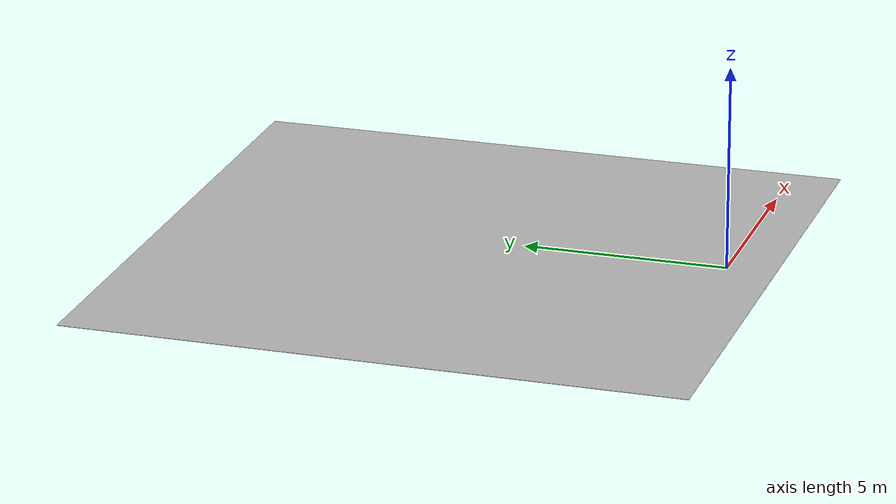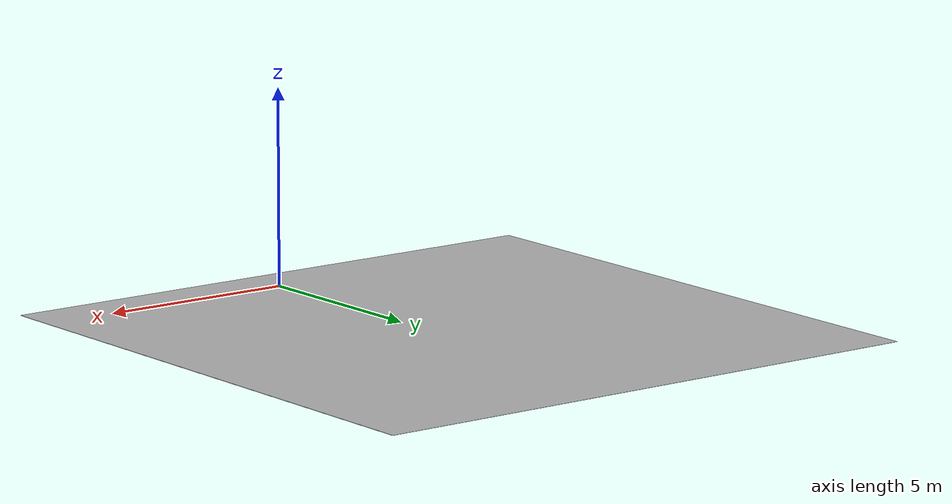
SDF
<?xml version="1.0" encoding="UTF-8"?>
<sdf version="1.4">
   <model name="my_ground_plane">
  <pose>-0.63 6.3 0 0 0 0</pose>
      <static>true</static>
      <link name="link">
         <collision name="collision">
            <geometry>
		<box>
			<size>15 15 0.01</size>
		</box>
            </geometry>
            <surface>
               <friction>
                  <ode>
                     <mu>100</mu>
                     <mu2>50</mu2>
                  </ode>
               </friction>
            </surface>
         </collision>
         <visual name="visual">
            <cast_shadows>true</cast_shadows>
            <geometry>
		<box>
			<size>15 15 0.01</size>
		</box>
            </geometry>
            <material>
               <script>
                  <uri>model://my_ground_plane/materials/scripts</uri>
                  <uri>model://my_ground_plane/materials/textures/</uri>
                  <name>MyGroundPlane/Image</name>
               </script>
            </material>
         </visual>
      </link>
   </model>
</sdf>
